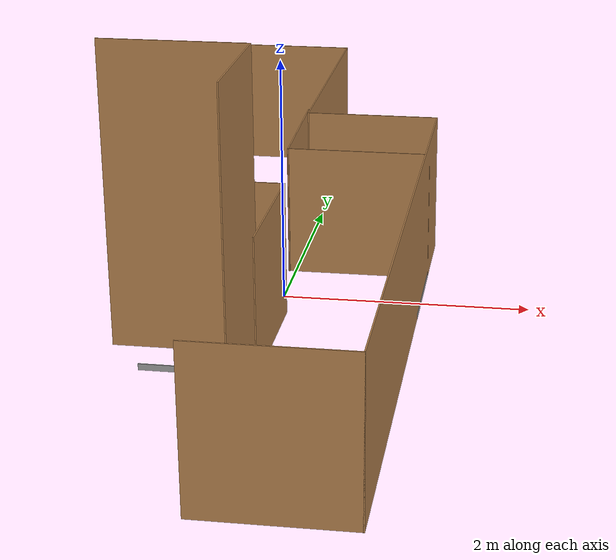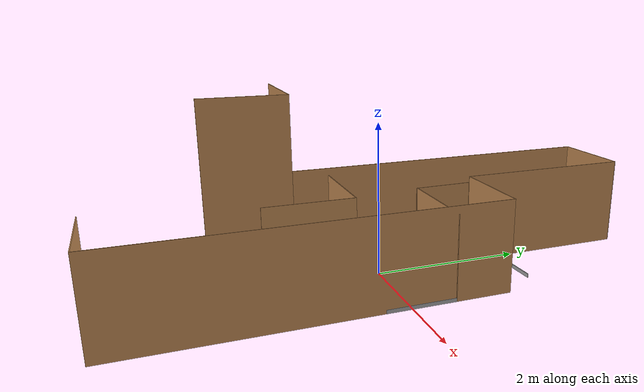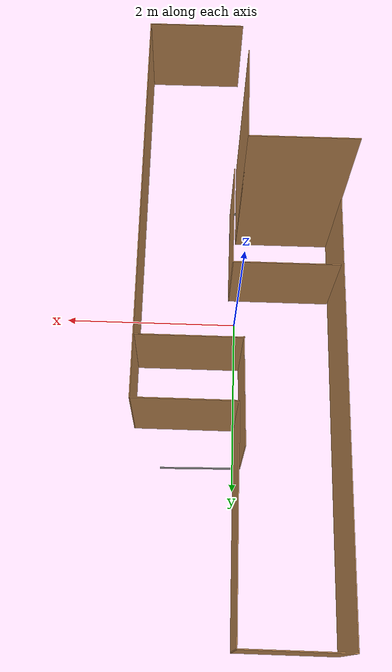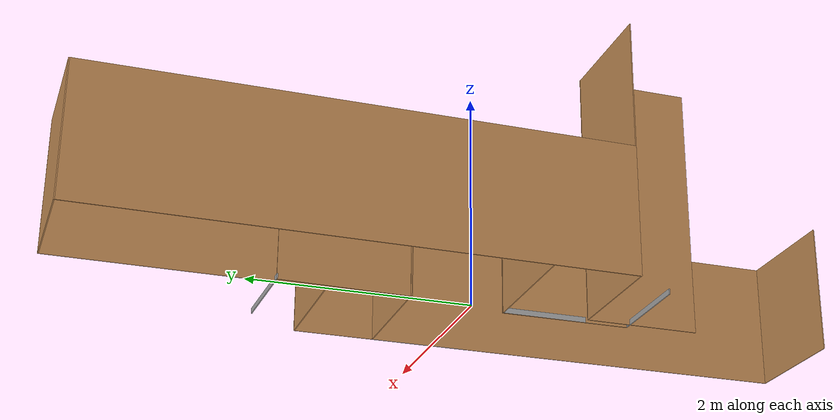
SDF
<?xml version='1.0'?>
<sdf version='1.6'>
  <model name='MAN1_CENTER'>
    <model name='Arena_MAN1'>
      <model name='Paredes_personalizadas_finder'>
        <pose frame=''>0.529687 0.221886 0 0 -0 0</pose>
        <link name='Wall_0'>
          <collision name='Wall_0_Collision'>
            <geometry>
              <box>
                <size>1.195 0.01 1.1</size>
              </box>
            </geometry>
            <pose frame=''>0 0 0.55 0 -0 0</pose>
          </collision>
          <visual name='Wall_0_Visual'>
            <pose frame=''>0 0 0.55 0 -0 0</pose>
            <geometry>
              <box>
                <size>1.195 0.01 1.1</size>
              </box>
            </geometry>
            <material>
              <script>
                <uri>file://media/materials/scripts/gazebo.material</uri>
                <name>Gazebo/Wood</name>
              </script>
              <ambient>1 1 1 1</ambient>
            </material>
            <meta>
              <layer>0</layer>
            </meta>
          </visual>
          <pose frame=''>0 0.444 0 0 -0 3.14159</pose>
        </link>
        <link name='Wall_2'>
          <collision name='Wall_2_Collision'>
            <geometry>
              <box>
                <size>0.898 0.01 0.05</size>
              </box>
            </geometry>
            <pose frame=''>0 0 0.025 0 -0 0</pose>
          </collision>
          <visual name='Wall_2_Visual'>
            <pose frame=''>0 0 0.025 0 -0 0</pose>
            <geometry>
              <box>
                <size>0.898 0.01 0.05</size>
              </box>
            </geometry>
            <material>
              <script>
                <uri>file://media/materials/scripts/gazebo.material</uri>
                <name>Gazebo/Grey</name>
              </script>
              <ambient>1 1 1 1</ambient>
            </material>
            <meta>
              <layer>0</layer>
            </meta>
          </visual>
          <pose frame=''>0.5925 0 0 0 -0 -1.5708</pose>
        </link>
        <static>1</static>
      </model>
      <model name='Paredes_personalizadas_finder_0'>
        <pose frame=''>-0.37663 -0.812332 0 0 0 -1.57597</pose>
        <link name='Wall_0'>
          <collision name='Wall_0_Collision'>
            <geometry>
              <box>
                <size>1.195 0.01 1.1</size>
              </box>
            </geometry>
            <pose frame=''>0 0 0.55 0 -0 0</pose>
          </collision>
          <visual name='Wall_0_Visual'>
            <pose frame=''>0 0 0.55 0 -0 0</pose>
            <geometry>
              <box>
                <size>1.195 0.01 1.1</size>
              </box>
            </geometry>
            <material>
              <script>
                <uri>file://media/materials/scripts/gazebo.material</uri>
                <name>Gazebo/Wood</name>
              </script>
              <ambient>1 1 1 1</ambient>
            </material>
            <meta>
              <layer>0</layer>
            </meta>
          </visual>
          <pose frame=''>0 0.444 0 0 -0 3.14159</pose>
        </link>
        <link name='Wall_2'>
          <collision name='Wall_2_Collision'>
            <geometry>
              <box>
                <size>0.898 0.01 0.05</size>
              </box>
            </geometry>
            <pose frame=''>0 0 0.025 0 -0 0</pose>
          </collision>
          <visual name='Wall_2_Visual'>
            <pose frame=''>0 0 0.025 0 -0 0</pose>
            <geometry>
              <box>
                <size>0.898 0.01 0.05</size>
              </box>
            </geometry>
            <material>
              <script>
                <uri>file://media/materials/scripts/gazebo.material</uri>
                <name>Gazebo/Grey</name>
              </script>
              <ambient>1 1 1 1</ambient>
            </material>
            <meta>
              <layer>0</layer>
            </meta>
          </visual>
          <pose frame=''>0.5925 0 0 0 -0 -1.5708</pose>
        </link>
        <static>1</static>
      </model>
      <model name='Paredes_personalizadas_finder_1'>
        <pose frame=''>-0.526117 -0.66875 0 0 -0 0</pose>
        <link name='Wall_0'>
          <collision name='Wall_0_Collision'>
            <geometry>
              <box>
                <size>1.195 0.01 1.1</size>
              </box>
            </geometry>
            <pose frame=''>0 0 0.55 0 -0 0</pose>
          </collision>
          <visual name='Wall_0_Visual'>
            <pose frame=''>0 0 0.55 0 -0 0</pose>
            <geometry>
              <box>
                <size>1.195 0.01 1.1</size>
              </box>
            </geometry>
            <material>
              <script>
                <uri>file://media/materials/scripts/gazebo.material</uri>
                <name>Gazebo/Wood</name>
              </script>
              <ambient>1 1 1 1</ambient>
            </material>
            <meta>
              <layer>0</layer>
            </meta>
          </visual>
          <pose frame=''>0 0.444 0 0 -0 3.14159</pose>
        </link>
        <link name='Wall_2'>
          <collision name='Wall_2_Collision'>
            <geometry>
              <box>
                <size>0.898 0.01 0.05</size>
              </box>
            </geometry>
            <pose frame=''>0 0 0.025 0 -0 0</pose>
          </collision>
          <visual name='Wall_2_Visual'>
            <pose frame=''>0 0 0.025 0 -0 0</pose>
            <geometry>
              <box>
                <size>0.898 0.01 0.05</size>
              </box>
            </geometry>
            <material>
              <script>
                <uri>file://media/materials/scripts/gazebo.material</uri>
                <name>Gazebo/Grey</name>
              </script>
              <ambient>1 1 1 1</ambient>
            </material>
            <meta>
              <layer>0</layer>
            </meta>
          </visual>
          <pose frame=''>0.5925 0 0 0 -0 -1.5708</pose>
        </link>
        <static>1</static>
      </model>
      <model name='Paredes_personalizadas_finder_2'>
        <pose frame=''>0.373059 1.2592 0 0 -0 1.59141</pose>
        <link name='Wall_0'>
          <collision name='Wall_0_Collision'>
            <geometry>
              <box>
                <size>1.195 0.01 1.1</size>
              </box>
            </geometry>
            <pose frame=''>0 0 0.55 0 -0 0</pose>
          </collision>
          <visual name='Wall_0_Visual'>
            <pose frame=''>0 0 0.55 0 -0 0</pose>
            <geometry>
              <box>
                <size>1.195 0.01 1.1</size>
              </box>
            </geometry>
            <material>
              <script>
                <uri>file://media/materials/scripts/gazebo.material</uri>
                <name>Gazebo/Wood</name>
              </script>
              <ambient>1 1 1 1</ambient>
            </material>
            <meta>
              <layer>0</layer>
            </meta>
          </visual>
          <pose frame=''>0 0.444 0 0 -0 3.14159</pose>
        </link>
        <link name='Wall_2'>
          <collision name='Wall_2_Collision'>
            <geometry>
              <box>
                <size>0.898 0.01 0.05</size>
              </box>
            </geometry>
            <pose frame=''>0 0 0.025 0 -0 0</pose>
          </collision>
          <visual name='Wall_2_Visual'>
            <pose frame=''>0 0 0.025 0 -0 0</pose>
            <geometry>
              <box>
                <size>0.898 0.01 0.05</size>
              </box>
            </geometry>
            <material>
              <script>
                <uri>file://media/materials/scripts/gazebo.material</uri>
                <name>Gazebo/Grey</name>
              </script>
              <ambient>1 1 1 1</ambient>
            </material>
            <meta>
              <layer>0</layer>
            </meta>
          </visual>
          <pose frame=''>0.5925 0 0 0 -0 -1.5708</pose>
        </link>
        <static>1</static>
      </model>
      <static>0</static>
      <allow_auto_disable>1</allow_auto_disable>
      <pose frame=''>0.003301 -0.100195 0 0 -0 0</pose>
    </model>
    <model name='MAN1_(CENTER)'>
      <pose frame=''>-0.003301 0.1002 0 0 -0 0</pose>
      <link name='Wall_0'>
        <collision name='Wall_0_Collision'>
          <geometry>
            <box>
              <size>1.135 0.01 1.2</size>
            </box>
          </geometry>
          <pose frame=''>0 0 0.6 0 -0 0</pose>
        </collision>
        <visual name='Wall_0_Visual'>
          <pose frame=''>0 0 0.6 0 -0 0</pose>
          <geometry>
            <box>
              <size>1.135 0.01 1.2</size>
            </box>
          </geometry>
          <material>
            <script>
              <uri>file://media/materials/scripts/gazebo.material</uri>
              <name>Gazebo/Wood</name>
            </script>
            <ambient>1 1 1 1</ambient>
          </material>
          <meta>
            <layer>0</layer>
          </meta>
        </visual>
        <pose frame=''>0.565 -3.585 0 0 -0 0</pose>
      </link>
      <link name='Wall_10'>
        <collision name='Wall_10_Collision'>
          <geometry>
            <box>
              <size>4.795 0.01 1.2</size>
            </box>
          </geometry>
          <pose frame=''>0 0 0.6 0 -0 0</pose>
        </collision>
        <visual name='Wall_10_Visual'>
          <pose frame=''>0 0 0.6 0 -0 0</pose>
          <geometry>
            <box>
              <size>4.795 0.01 1.2</size>
            </box>
          </geometry>
          <material>
            <script>
              <uri>file://media/materials/scripts/gazebo.material</uri>
              <name>Gazebo/Wood</name>
            </script>
            <ambient>1 1 1 1</ambient>
          </material>
          <meta>
            <layer>0</layer>
          </meta>
        </visual>
        <pose frame=''>-1.1275 1.1925 0 0 -0 -1.5708</pose>
      </link>
      <link name='Wall_16'>
        <collision name='Wall_16_Collision'>
          <geometry>
            <box>
              <size>1.135 0.01 2.4</size>
            </box>
          </geometry>
          <pose frame=''>0 0 1.2 0 -0 0</pose>
        </collision>
        <visual name='Wall_16_Visual'>
          <pose frame=''>0 0 1.2 0 -0 0</pose>
          <geometry>
            <box>
              <size>1.135 0.01 2.4</size>
            </box>
          </geometry>
          <material>
            <script>
              <uri>file://media/materials/scripts/gazebo.material</uri>
              <name>Gazebo/Wood</name>
            </script>
            <ambient>1 1 1 1</ambient>
          </material>
          <meta>
            <layer>0</layer>
          </meta>
        </visual>
        <pose frame=''>-0.565 -1.2 0 0 -0 0</pose>
      </link>
      <link name='Wall_18'>
        <collision name='Wall_18_Collision'>
          <geometry>
            <box>
              <size>1.06 0.01 2.4</size>
            </box>
          </geometry>
          <pose frame=''>0 0 1.2 0 -0 0</pose>
        </collision>
        <visual name='Wall_18_Visual'>
          <pose frame=''>0 0 1.2 0 -0 0</pose>
          <geometry>
            <box>
              <size>1.06 0.01 2.4</size>
            </box>
          </geometry>
          <material>
            <script>
              <uri>file://media/materials/scripts/gazebo.material</uri>
              <name>Gazebo/Wood</name>
            </script>
            <ambient>1 1 1 1</ambient>
          </material>
          <meta>
            <layer>0</layer>
          </meta>
        </visual>
        <pose frame=''>-0.0025 -1.725 0 0 -0 -1.5708</pose>
      </link>
      <link name='Wall_2'>
        <collision name='Wall_2_Collision'>
          <geometry>
            <box>
              <size>4.795 0.01 1.2</size>
            </box>
          </geometry>
          <pose frame=''>0 0 0.6 0 -0 0</pose>
        </collision>
        <visual name='Wall_2_Visual'>
          <pose frame=''>0 0 0.6 0 -0 0</pose>
          <geometry>
            <box>
              <size>4.795 0.01 1.2</size>
            </box>
          </geometry>
          <material>
            <script>
              <uri>file://media/materials/scripts/gazebo.material</uri>
              <name>Gazebo/Wood</name>
            </script>
            <ambient>1 1 1 1</ambient>
          </material>
          <meta>
            <layer>0</layer>
          </meta>
        </visual>
        <pose frame=''>1.1275 -1.1925 0 0 -0 1.5708</pose>
      </link>
      <link name='Wall_4'>
        <collision name='Wall_4_Collision'>
          <geometry>
            <box>
              <size>1.13997 0.01 1.2</size>
            </box>
          </geometry>
          <pose frame=''>0 0 0.6 0 -0 0</pose>
        </collision>
        <visual name='Wall_4_Visual'>
          <pose frame=''>0 0 0.6 0 -0 0</pose>
          <geometry>
            <box>
              <size>1.13997 0.01 1.2</size>
            </box>
          </geometry>
          <material>
            <script>
              <uri>file://media/materials/scripts/gazebo.material</uri>
              <name>Gazebo/Wood</name>
            </script>
            <ambient>1 1 1 1</ambient>
          </material>
          <meta>
            <layer>0</layer>
          </meta>
        </visual>
        <pose frame=''>0.5625 1.2 0 0 -0 3.14159</pose>
      </link>
      <link name='Wall_6'>
        <collision name='Wall_6_Collision'>
          <geometry>
            <box>
              <size>2.395 0.01 1.2</size>
            </box>
          </geometry>
          <pose frame=''>0 0 0.6 0 -0 0</pose>
        </collision>
        <visual name='Wall_6_Visual'>
          <pose frame=''>0 0 0.6 0 -0 0</pose>
          <geometry>
            <box>
              <size>2.395 0.01 1.2</size>
            </box>
          </geometry>
          <material>
            <script>
              <uri>file://media/materials/scripts/gazebo.material</uri>
              <name>Gazebo/Wood</name>
            </script>
            <ambient>1 1 1 1</ambient>
          </material>
          <meta>
            <layer>0</layer>
          </meta>
        </visual>
        <pose frame=''>-0.0025 2.3925 0 0 -0 1.5708</pose>
      </link>
      <link name='Wall_8'>
        <collision name='Wall_8_Collision'>
          <geometry>
            <box>
              <size>1.135 0.01 1.2</size>
            </box>
          </geometry>
          <pose frame=''>0 0 0.6 0 -0 0</pose>
        </collision>
        <visual name='Wall_8_Visual'>
          <pose frame=''>0 0 0.6 0 -0 0</pose>
          <geometry>
            <box>
              <size>1.135 0.01 1.2</size>
            </box>
          </geometry>
          <material>
            <script>
              <uri>file://media/materials/scripts/gazebo.material</uri>
              <name>Gazebo/Wood</name>
            </script>
            <ambient>1 1 1 1</ambient>
          </material>
          <meta>
            <layer>0</layer>
          </meta>
        </visual>
        <pose frame=''>-0.565 3.585 0 0 -0 3.14159</pose>
      </link>
      <static>1</static>
    </model>
    <static>0</static>
    <allow_auto_disable>1</allow_auto_disable>
  </model>
</sdf>
